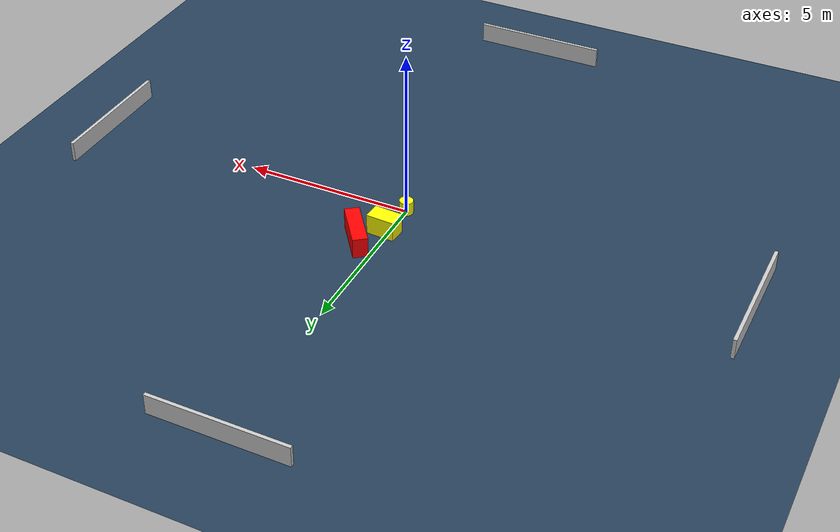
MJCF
<?xml version="1.0" ?>
<mujoco model="generated_environment">
  <option timestep="0.01" integrator="RK4" cone="elliptic"/>
  <default>
    <geom density="1"/>
  </default>
  <asset>
    <texture builtin="gradient" height="3072" name="skybox" rgb1="0.3 0.5 0.7" rgb2="0 0 0" type="skybox" width="512"/>
    <texture builtin="checker" height="300" name="groundplane" rgb1="0.2 0.3 0.4" rgb2="0.1 0.2 0.3" type="2d" width="300"/>
    <material name="groundplane" reflectance="0.2" texrepeat="5 5" texture="groundplane"/>
  </asset>
  <worldbody>
    <light dir="0 0 -1" directional="true" pos="0 0 1.5"/>
    <geom condim="3" friction="0.5 0.005 0.001" material="groundplane" name="floor" pos="0 0 0" size="0 0 0.05" type="plane"/>
    <body name="walls">
      <geom name="wall_1" condim="4" pos="-10.0 0.0 0.3" rgba="0.800000011920929 0.800000011920929 0.800000011920929 1.0" size="0.05 2.0 0.3" type="box"/>
      <geom name="wall_2" condim="4" pos="10.0 0.0 0.3" rgba="0.800000011920929 0.800000011920929 0.800000011920929 1.0" size="0.05 2.0 0.3" type="box"/>
      <geom name="wall_3" condim="4" pos="0.0 -10.0 0.3" rgba="0.800000011920929 0.800000011920929 0.800000011920929 1.0" size="2.0 0.05 0.3" type="box"/>
      <geom name="wall_4" condim="4" pos="0.0 10.0 0.3" rgba="0.800000011920929 0.800000011920929 0.800000011920929 1.0" size="2.0 0.05 0.3" type="box"/>
    </body>
    <body name="robot">
      <joint name="joint_x" type="slide" pos="0 0 0" axis="1 0 0"/>
      <joint name="joint_y" type="slide" pos="0 0 0" axis="0 1 0"/>
      <geom name="robot" type="cylinder" pos="0.0 0.0 0.2" size="0.2 0.2 0.0" mass="5.0" friction="1.0 0.005 0.0001" condim="4" rgba="1.0 1.0 0.0 1.0"/>
    </body>
    <body name="obstacle_1_movable">
      <geom name="obstacle_1_movable" condim="4" pos="0.12947737313743396 1.1274063608870324 0.3" euler="0 0 86.69085452512655" friction="0.0 0.005 0.001" rgba="1.0 1.0 0.0 1.0" size="0.2597719345302172 0.41408230802398865 0.3" type="box" mass="0.1"/>
      <joint type="free"/>
    </body>
    <body name="obstacle_2_static">
      <geom name="obstacle_2_static" condim="4" pos="0.6383641843392664 1.8341521226300084 0.3" euler="0 0 216.63934188973795" friction="0.0 0.005 0.001" rgba="1.0 0.0 0.0 1.0" size="0.2146990954114811 0.734951930714691 0.3" type="box"/>
    </body>
  </worldbody>
  <actuator>
    <motor name="actuator_x" joint="joint_x" gear="1" ctrlrange="-1 1"/>
    <motor name="actuator_y" joint="joint_y" gear="1" ctrlrange="-1 1"/>
  </actuator>
</mujoco>
